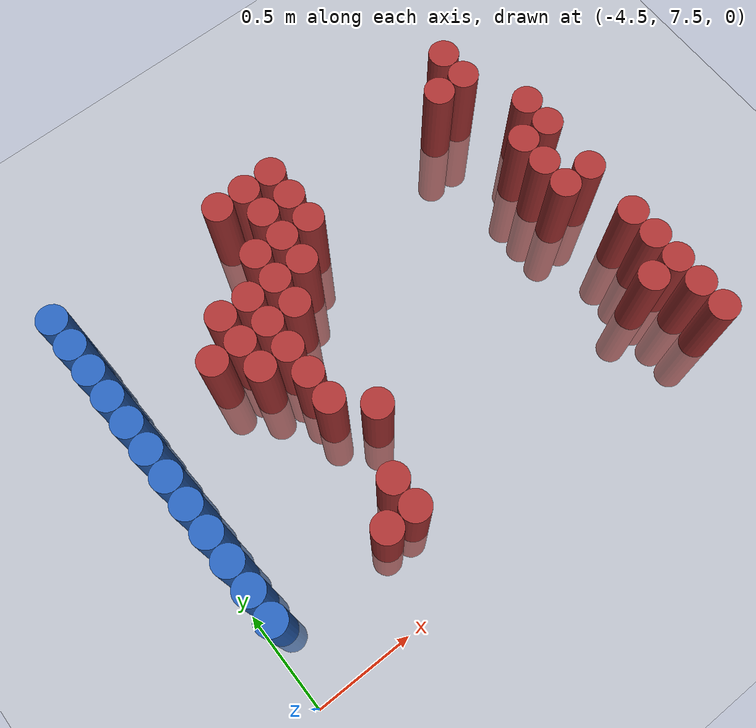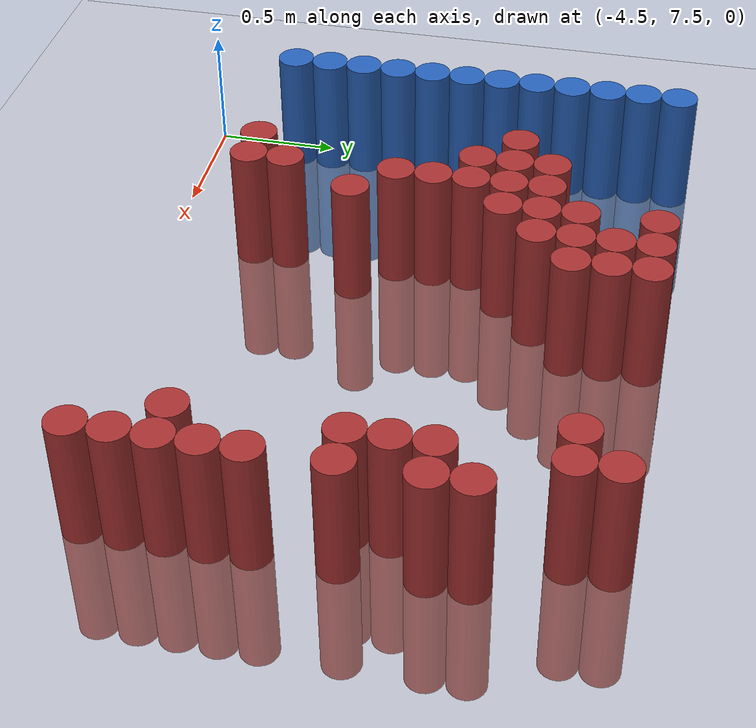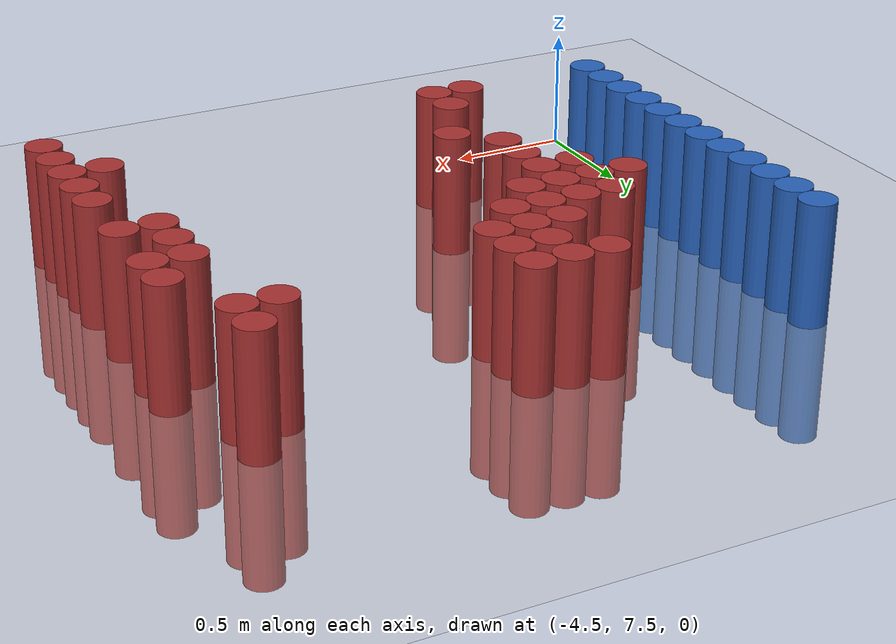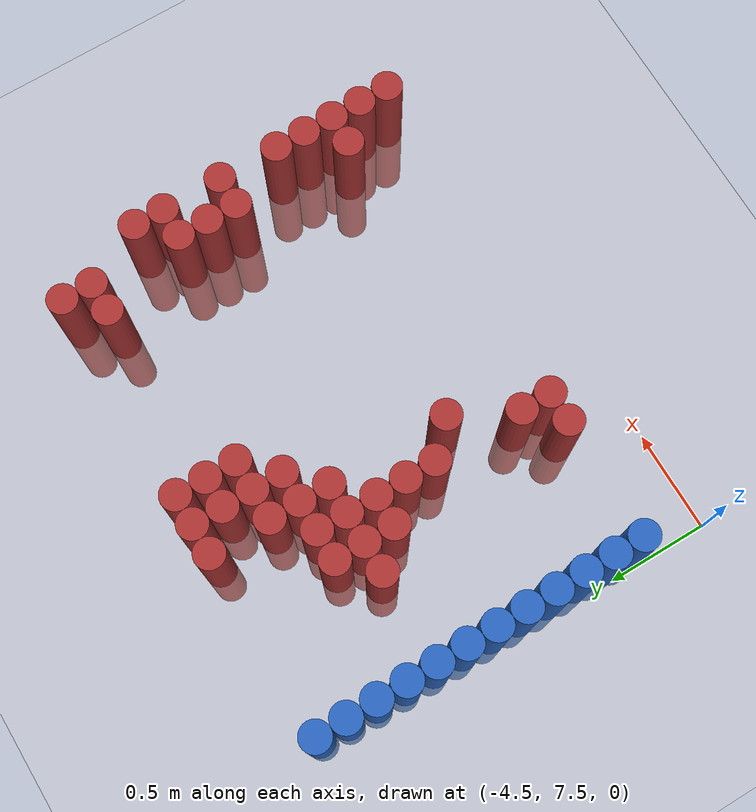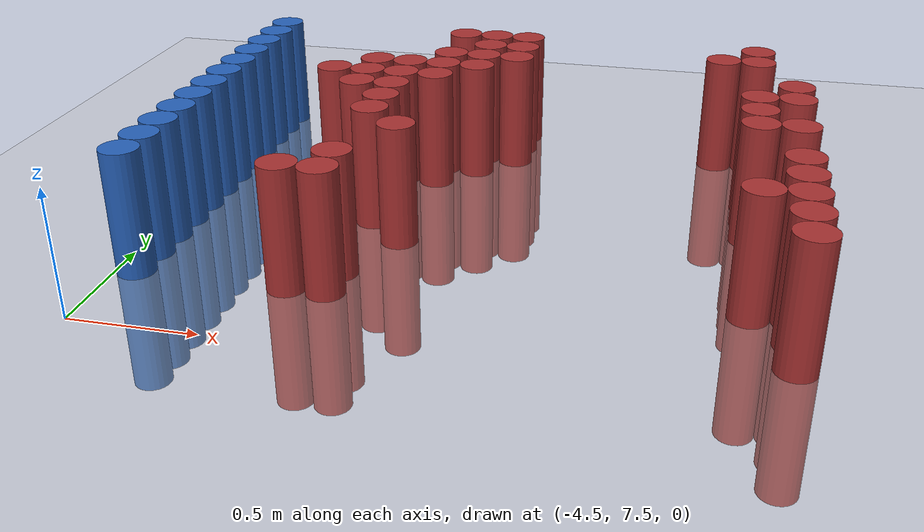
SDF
<sdf version="1.6">
 <world name="default">
  <model name="ground_plane">
   <static>1</static>
   <link name="link">
    <collision name="collision">
     <geometry><plane><normal>0 0 1</normal><size>100 100</size></plane></geometry>
     <surface><friction><ode><mu>100</mu><mu2>50</mu2></ode></friction></surface>
    </collision>
    <visual name="visual">
     <cast_shadows>0</cast_shadows>
     <geometry><plane><normal>0 0 1</normal><size>100 100</size></plane></geometry>
     <material>
      <script><uri>file://media/materials/scripts/gazebo.material</uri><name>Gazebo/Grey</name></script>
     </material>
    </visual>
   </link>
  </model>
  <model name="unit_cylinder_114">
   <static>1</static>
   <pose>-4.425000 7.875000 0.000000 0.000000 0.000000 0.000000</pose>
   <link name="link">
    <inertial>
     <mass>1</mass>
     <inertia><ixx>0.145833</ixx><ixy>0</ixy><ixz>0</ixz><iyy>0.145833</iyy><iyz>0</iyz><izz>0.125</izz></inertia>
    </inertial>
    <collision name="collision">
     <geometry><cylinder><radius>0.075000</radius><length>1</length></cylinder></geometry>
    </collision>
    <visual name="visual">
     <geometry><cylinder><radius>0.075000</radius><length>1</length></cylinder></geometry>
     <material>
      <ambient>0.152000 0.379000 0.720000 1</ambient>
      <diffuse>0.152000 0.379000 0.720000 1</diffuse>
     </material>
     <material>
      <script><name>Gazebo/Grey</name><uri>file://media/materials/scripts/gazebo.material</uri></script>
     </material>
    </visual>
   </link>
  </model>
  <model name="unit_cylinder_115">
   <static>1</static>
   <pose>-4.425000 8.025000 0.000000 0.000000 0.000000 0.000000</pose>
   <link name="link">
    <inertial>
     <mass>1</mass>
     <inertia><ixx>0.145833</ixx><ixy>0</ixy><ixz>0</ixz><iyy>0.145833</iyy><iyz>0</iyz><izz>0.125</izz></inertia>
    </inertial>
    <collision name="collision">
     <geometry><cylinder><radius>0.075000</radius><length>1</length></cylinder></geometry>
    </collision>
    <visual name="visual">
     <geometry><cylinder><radius>0.075000</radius><length>1</length></cylinder></geometry>
     <material>
      <ambient>0.152000 0.379000 0.720000 1</ambient>
      <diffuse>0.152000 0.379000 0.720000 1</diffuse>
     </material>
     <material>
      <script><name>Gazebo/Grey</name><uri>file://media/materials/scripts/gazebo.material</uri></script>
     </material>
    </visual>
   </link>
  </model>
  <model name="unit_cylinder_116">
   <static>1</static>
   <pose>-4.425000 8.175000 0.000000 0.000000 0.000000 0.000000</pose>
   <link name="link">
    <inertial>
     <mass>1</mass>
     <inertia><ixx>0.145833</ixx><ixy>0</ixy><ixz>0</ixz><iyy>0.145833</iyy><iyz>0</iyz><izz>0.125</izz></inertia>
    </inertial>
    <collision name="collision">
     <geometry><cylinder><radius>0.075000</radius><length>1</length></cylinder></geometry>
    </collision>
    <visual name="visual">
     <geometry><cylinder><radius>0.075000</radius><length>1</length></cylinder></geometry>
     <material>
      <ambient>0.152000 0.379000 0.720000 1</ambient>
      <diffuse>0.152000 0.379000 0.720000 1</diffuse>
     </material>
     <material>
      <script><name>Gazebo/Grey</name><uri>file://media/materials/scripts/gazebo.material</uri></script>
     </material>
    </visual>
   </link>
  </model>
  <model name="unit_cylinder_117">
   <static>1</static>
   <pose>-4.425000 8.325000 0.000000 0.000000 0.000000 0.000000</pose>
   <link name="link">
    <inertial>
     <mass>1</mass>
     <inertia><ixx>0.145833</ixx><ixy>0</ixy><ixz>0</ixz><iyy>0.145833</iyy><iyz>0</iyz><izz>0.125</izz></inertia>
    </inertial>
    <collision name="collision">
     <geometry><cylinder><radius>0.075000</radius><length>1</length></cylinder></geometry>
    </collision>
    <visual name="visual">
     <geometry><cylinder><radius>0.075000</radius><length>1</length></cylinder></geometry>
     <material>
      <ambient>0.152000 0.379000 0.720000 1</ambient>
      <diffuse>0.152000 0.379000 0.720000 1</diffuse>
     </material>
     <material>
      <script><name>Gazebo/Grey</name><uri>file://media/materials/scripts/gazebo.material</uri></script>
     </material>
    </visual>
   </link>
  </model>
  <model name="unit_cylinder_118">
   <static>1</static>
   <pose>-4.425000 8.475000 0.000000 0.000000 0.000000 0.000000</pose>
   <link name="link">
    <inertial>
     <mass>1</mass>
     <inertia><ixx>0.145833</ixx><ixy>0</ixy><ixz>0</ixz><iyy>0.145833</iyy><iyz>0</iyz><izz>0.125</izz></inertia>
    </inertial>
    <collision name="collision">
     <geometry><cylinder><radius>0.075000</radius><length>1</length></cylinder></geometry>
    </collision>
    <visual name="visual">
     <geometry><cylinder><radius>0.075000</radius><length>1</length></cylinder></geometry>
     <material>
      <ambient>0.152000 0.379000 0.720000 1</ambient>
      <diffuse>0.152000 0.379000 0.720000 1</diffuse>
     </material>
     <material>
      <script><name>Gazebo/Grey</name><uri>file://media/materials/scripts/gazebo.material</uri></script>
     </material>
    </visual>
   </link>
  </model>
  <model name="unit_cylinder_119">
   <static>1</static>
   <pose>-4.425000 8.625000 0.000000 0.000000 0.000000 0.000000</pose>
   <link name="link">
    <inertial>
     <mass>1</mass>
     <inertia><ixx>0.145833</ixx><ixy>0</ixy><ixz>0</ixz><iyy>0.145833</iyy><iyz>0</iyz><izz>0.125</izz></inertia>
    </inertial>
    <collision name="collision">
     <geometry><cylinder><radius>0.075000</radius><length>1</length></cylinder></geometry>
    </collision>
    <visual name="visual">
     <geometry><cylinder><radius>0.075000</radius><length>1</length></cylinder></geometry>
     <material>
      <ambient>0.152000 0.379000 0.720000 1</ambient>
      <diffuse>0.152000 0.379000 0.720000 1</diffuse>
     </material>
     <material>
      <script><name>Gazebo/Grey</name><uri>file://media/materials/scripts/gazebo.material</uri></script>
     </material>
    </visual>
   </link>
  </model>
  <model name="unit_cylinder_120">
   <static>1</static>
   <pose>-4.425000 8.775000 0.000000 0.000000 0.000000 0.000000</pose>
   <link name="link">
    <inertial>
     <mass>1</mass>
     <inertia><ixx>0.145833</ixx><ixy>0</ixy><ixz>0</ixz><iyy>0.145833</iyy><iyz>0</iyz><izz>0.125</izz></inertia>
    </inertial>
    <collision name="collision">
     <geometry><cylinder><radius>0.075000</radius><length>1</length></cylinder></geometry>
    </collision>
    <visual name="visual">
     <geometry><cylinder><radius>0.075000</radius><length>1</length></cylinder></geometry>
     <material>
      <ambient>0.152000 0.379000 0.720000 1</ambient>
      <diffuse>0.152000 0.379000 0.720000 1</diffuse>
     </material>
     <material>
      <script><name>Gazebo/Grey</name><uri>file://media/materials/scripts/gazebo.material</uri></script>
     </material>
    </visual>
   </link>
  </model>
  <model name="unit_cylinder_121">
   <static>1</static>
   <pose>-4.425000 8.925000 0.000000 0.000000 0.000000 0.000000</pose>
   <link name="link">
    <inertial>
     <mass>1</mass>
     <inertia><ixx>0.145833</ixx><ixy>0</ixy><ixz>0</ixz><iyy>0.145833</iyy><iyz>0</iyz><izz>0.125</izz></inertia>
    </inertial>
    <collision name="collision">
     <geometry><cylinder><radius>0.075000</radius><length>1</length></cylinder></geometry>
    </collision>
    <visual name="visual">
     <geometry><cylinder><radius>0.075000</radius><length>1</length></cylinder></geometry>
     <material>
      <ambient>0.152000 0.379000 0.720000 1</ambient>
      <diffuse>0.152000 0.379000 0.720000 1</diffuse>
     </material>
     <material>
      <script><name>Gazebo/Grey</name><uri>file://media/materials/scripts/gazebo.material</uri></script>
     </material>
    </visual>
   </link>
  </model>
  <model name="unit_cylinder_122">
   <static>1</static>
   <pose>-4.425000 9.075000 0.000000 0.000000 0.000000 0.000000</pose>
   <link name="link">
    <inertial>
     <mass>1</mass>
     <inertia><ixx>0.145833</ixx><ixy>0</ixy><ixz>0</ixz><iyy>0.145833</iyy><iyz>0</iyz><izz>0.125</izz></inertia>
    </inertial>
    <collision name="collision">
     <geometry><cylinder><radius>0.075000</radius><length>1</length></cylinder></geometry>
    </collision>
    <visual name="visual">
     <geometry><cylinder><radius>0.075000</radius><length>1</length></cylinder></geometry>
     <material>
      <ambient>0.152000 0.379000 0.720000 1</ambient>
      <diffuse>0.152000 0.379000 0.720000 1</diffuse>
     </material>
     <material>
      <script><name>Gazebo/Grey</name><uri>file://media/materials/scripts/gazebo.material</uri></script>
     </material>
    </visual>
   </link>
  </model>
  <model name="unit_cylinder_123">
   <static>1</static>
   <pose>-4.425000 9.225000 0.000000 0.000000 0.000000 0.000000</pose>
   <link name="link">
    <inertial>
     <mass>1</mass>
     <inertia><ixx>0.145833</ixx><ixy>0</ixy><ixz>0</ixz><iyy>0.145833</iyy><iyz>0</iyz><izz>0.125</izz></inertia>
    </inertial>
    <collision name="collision">
     <geometry><cylinder><radius>0.075000</radius><length>1</length></cylinder></geometry>
    </collision>
    <visual name="visual">
     <geometry><cylinder><radius>0.075000</radius><length>1</length></cylinder></geometry>
     <material>
      <ambient>0.152000 0.379000 0.720000 1</ambient>
      <diffuse>0.152000 0.379000 0.720000 1</diffuse>
     </material>
     <material>
      <script><name>Gazebo/Grey</name><uri>file://media/materials/scripts/gazebo.material</uri></script>
     </material>
    </visual>
   </link>
  </model>
  <model name="unit_cylinder_124">
   <static>1</static>
   <pose>-4.425000 9.375000 0.000000 0.000000 0.000000 0.000000</pose>
   <link name="link">
    <inertial>
     <mass>1</mass>
     <inertia><ixx>0.145833</ixx><ixy>0</ixy><ixz>0</ixz><iyy>0.145833</iyy><iyz>0</iyz><izz>0.125</izz></inertia>
    </inertial>
    <collision name="collision">
     <geometry><cylinder><radius>0.075000</radius><length>1</length></cylinder></geometry>
    </collision>
    <visual name="visual">
     <geometry><cylinder><radius>0.075000</radius><length>1</length></cylinder></geometry>
     <material>
      <ambient>0.152000 0.379000 0.720000 1</ambient>
      <diffuse>0.152000 0.379000 0.720000 1</diffuse>
     </material>
     <material>
      <script><name>Gazebo/Grey</name><uri>file://media/materials/scripts/gazebo.material</uri></script>
     </material>
    </visual>
   </link>
  </model>
  <model name="unit_cylinder_125">
   <static>1</static>
   <pose>-4.425000 9.525000 0.000000 0.000000 0.000000 0.000000</pose>
   <link name="link">
    <inertial>
     <mass>1</mass>
     <inertia><ixx>0.145833</ixx><ixy>0</ixy><ixz>0</ixz><iyy>0.145833</iyy><iyz>0</iyz><izz>0.125</izz></inertia>
    </inertial>
    <collision name="collision">
     <geometry><cylinder><radius>0.075000</radius><length>1</length></cylinder></geometry>
    </collision>
    <visual name="visual">
     <geometry><cylinder><radius>0.075000</radius><length>1</length></cylinder></geometry>
     <material>
      <ambient>0.152000 0.379000 0.720000 1</ambient>
      <diffuse>0.152000 0.379000 0.720000 1</diffuse>
     </material>
     <material>
      <script><name>Gazebo/Grey</name><uri>file://media/materials/scripts/gazebo.material</uri></script>
     </material>
    </visual>
   </link>
  </model>
  <model name="unit_cylinder_148">
   <static>1</static>
   <pose>-3.975000 8.925000 0.000000 0.000000 0.000000 0.000000</pose>
   <link name="link">
    <inertial>
     <mass>1</mass>
     <inertia><ixx>0.145833</ixx><ixy>0</ixy><ixz>0</ixz><iyy>0.145833</iyy><iyz>0</iyz><izz>0.125</izz></inertia>
    </inertial>
    <collision name="collision">
     <geometry><cylinder><radius>0.075000</radius><length>1</length></cylinder></geometry>
    </collision>
    <visual name="visual">
     <geometry><cylinder><radius>0.075000</radius><length>1</length></cylinder></geometry>
     <material>
      <ambient>0.648000 0.192000 0.192000 1</ambient>
      <diffuse>0.648000 0.192000 0.192000 1</diffuse>
     </material>
     <material>
      <script><name>Gazebo/Grey</name><uri>file://media/materials/scripts/gazebo.material</uri></script>
     </material>
    </visual>
   </link>
  </model>
  <model name="unit_cylinder_151">
   <static>1</static>
   <pose>-3.825000 7.875000 0.000000 0.000000 0.000000 0.000000</pose>
   <link name="link">
    <inertial>
     <mass>1</mass>
     <inertia><ixx>0.145833</ixx><ixy>0</ixy><ixz>0</ixz><iyy>0.145833</iyy><iyz>0</iyz><izz>0.125</izz></inertia>
    </inertial>
    <collision name="collision">
     <geometry><cylinder><radius>0.075000</radius><length>1</length></cylinder></geometry>
    </collision>
    <visual name="visual">
     <geometry><cylinder><radius>0.075000</radius><length>1</length></cylinder></geometry>
     <material>
      <ambient>0.648000 0.192000 0.192000 1</ambient>
      <diffuse>0.648000 0.192000 0.192000 1</diffuse>
     </material>
     <material>
      <script><name>Gazebo/Grey</name><uri>file://media/materials/scripts/gazebo.material</uri></script>
     </material>
    </visual>
   </link>
  </model>
  <model name="unit_cylinder_152">
   <static>1</static>
   <pose>-3.825000 8.775000 0.000000 0.000000 0.000000 0.000000</pose>
   <link name="link">
    <inertial>
     <mass>1</mass>
     <inertia><ixx>0.145833</ixx><ixy>0</ixy><ixz>0</ixz><iyy>0.145833</iyy><iyz>0</iyz><izz>0.125</izz></inertia>
    </inertial>
    <collision name="collision">
     <geometry><cylinder><radius>0.075000</radius><length>1</length></cylinder></geometry>
    </collision>
    <visual name="visual">
     <geometry><cylinder><radius>0.075000</radius><length>1</length></cylinder></geometry>
     <material>
      <ambient>0.648000 0.192000 0.192000 1</ambient>
      <diffuse>0.648000 0.192000 0.192000 1</diffuse>
     </material>
     <material>
      <script><name>Gazebo/Grey</name><uri>file://media/materials/scripts/gazebo.material</uri></script>
     </material>
    </visual>
   </link>
  </model>
  <model name="unit_cylinder_153">
   <static>1</static>
   <pose>-3.825000 8.925000 0.000000 0.000000 0.000000 0.000000</pose>
   <link name="link">
    <inertial>
     <mass>1</mass>
     <inertia><ixx>0.145833</ixx><ixy>0</ixy><ixz>0</ixz><iyy>0.145833</iyy><iyz>0</iyz><izz>0.125</izz></inertia>
    </inertial>
    <collision name="collision">
     <geometry><cylinder><radius>0.075000</radius><length>1</length></cylinder></geometry>
    </collision>
    <visual name="visual">
     <geometry><cylinder><radius>0.075000</radius><length>1</length></cylinder></geometry>
     <material>
      <ambient>0.648000 0.192000 0.192000 1</ambient>
      <diffuse>0.648000 0.192000 0.192000 1</diffuse>
     </material>
     <material>
      <script><name>Gazebo/Grey</name><uri>file://media/materials/scripts/gazebo.material</uri></script>
     </material>
    </visual>
   </link>
  </model>
  <model name="unit_cylinder_154">
   <static>1</static>
   <pose>-3.825000 9.075000 0.000000 0.000000 0.000000 0.000000</pose>
   <link name="link">
    <inertial>
     <mass>1</mass>
     <inertia><ixx>0.145833</ixx><ixy>0</ixy><ixz>0</ixz><iyy>0.145833</iyy><iyz>0</iyz><izz>0.125</izz></inertia>
    </inertial>
    <collision name="collision">
     <geometry><cylinder><radius>0.075000</radius><length>1</length></cylinder></geometry>
    </collision>
    <visual name="visual">
     <geometry><cylinder><radius>0.075000</radius><length>1</length></cylinder></geometry>
     <material>
      <ambient>0.648000 0.192000 0.192000 1</ambient>
      <diffuse>0.648000 0.192000 0.192000 1</diffuse>
     </material>
     <material>
      <script><name>Gazebo/Grey</name><uri>file://media/materials/scripts/gazebo.material</uri></script>
     </material>
    </visual>
   </link>
  </model>
  <model name="unit_cylinder_158">
   <static>1</static>
   <pose>-3.675000 7.875000 0.000000 0.000000 0.000000 0.000000</pose>
   <link name="link">
    <inertial>
     <mass>1</mass>
     <inertia><ixx>0.145833</ixx><ixy>0</ixy><ixz>0</ixz><iyy>0.145833</iyy><iyz>0</iyz><izz>0.125</izz></inertia>
    </inertial>
    <collision name="collision">
     <geometry><cylinder><radius>0.075000</radius><length>1</length></cylinder></geometry>
    </collision>
    <visual name="visual">
     <geometry><cylinder><radius>0.075000</radius><length>1</length></cylinder></geometry>
     <material>
      <ambient>0.648000 0.192000 0.192000 1</ambient>
      <diffuse>0.648000 0.192000 0.192000 1</diffuse>
     </material>
     <material>
      <script><name>Gazebo/Grey</name><uri>file://media/materials/scripts/gazebo.material</uri></script>
     </material>
    </visual>
   </link>
  </model>
  <model name="unit_cylinder_159">
   <static>1</static>
   <pose>-3.675000 8.025000 0.000000 0.000000 0.000000 0.000000</pose>
   <link name="link">
    <inertial>
     <mass>1</mass>
     <inertia><ixx>0.145833</ixx><ixy>0</ixy><ixz>0</ixz><iyy>0.145833</iyy><iyz>0</iyz><izz>0.125</izz></inertia>
    </inertial>
    <collision name="collision">
     <geometry><cylinder><radius>0.075000</radius><length>1</length></cylinder></geometry>
    </collision>
    <visual name="visual">
     <geometry><cylinder><radius>0.075000</radius><length>1</length></cylinder></geometry>
     <material>
      <ambient>0.648000 0.192000 0.192000 1</ambient>
      <diffuse>0.648000 0.192000 0.192000 1</diffuse>
     </material>
     <material>
      <script><name>Gazebo/Grey</name><uri>file://media/materials/scripts/gazebo.material</uri></script>
     </material>
    </visual>
   </link>
  </model>
  <model name="unit_cylinder_160">
   <static>1</static>
   <pose>-3.675000 8.475000 0.000000 0.000000 0.000000 0.000000</pose>
   <link name="link">
    <inertial>
     <mass>1</mass>
     <inertia><ixx>0.145833</ixx><ixy>0</ixy><ixz>0</ixz><iyy>0.145833</iyy><iyz>0</iyz><izz>0.125</izz></inertia>
    </inertial>
    <collision name="collision">
     <geometry><cylinder><radius>0.075000</radius><length>1</length></cylinder></geometry>
    </collision>
    <visual name="visual">
     <geometry><cylinder><radius>0.075000</radius><length>1</length></cylinder></geometry>
     <material>
      <ambient>0.648000 0.192000 0.192000 1</ambient>
      <diffuse>0.648000 0.192000 0.192000 1</diffuse>
     </material>
     <material>
      <script><name>Gazebo/Grey</name><uri>file://media/materials/scripts/gazebo.material</uri></script>
     </material>
    </visual>
   </link>
  </model>
  <model name="unit_cylinder_161">
   <static>1</static>
   <pose>-3.675000 8.625000 0.000000 0.000000 0.000000 0.000000</pose>
   <link name="link">
    <inertial>
     <mass>1</mass>
     <inertia><ixx>0.145833</ixx><ixy>0</ixy><ixz>0</ixz><iyy>0.145833</iyy><iyz>0</iyz><izz>0.125</izz></inertia>
    </inertial>
    <collision name="collision">
     <geometry><cylinder><radius>0.075000</radius><length>1</length></cylinder></geometry>
    </collision>
    <visual name="visual">
     <geometry><cylinder><radius>0.075000</radius><length>1</length></cylinder></geometry>
     <material>
      <ambient>0.648000 0.192000 0.192000 1</ambient>
      <diffuse>0.648000 0.192000 0.192000 1</diffuse>
     </material>
     <material>
      <script><name>Gazebo/Grey</name><uri>file://media/materials/scripts/gazebo.material</uri></script>
     </material>
    </visual>
   </link>
  </model>
  <model name="unit_cylinder_162">
   <static>1</static>
   <pose>-3.675000 8.775000 0.000000 0.000000 0.000000 0.000000</pose>
   <link name="link">
    <inertial>
     <mass>1</mass>
     <inertia><ixx>0.145833</ixx><ixy>0</ixy><ixz>0</ixz><iyy>0.145833</iyy><iyz>0</iyz><izz>0.125</izz></inertia>
    </inertial>
    <collision name="collision">
     <geometry><cylinder><radius>0.075000</radius><length>1</length></cylinder></geometry>
    </collision>
    <visual name="visual">
     <geometry><cylinder><radius>0.075000</radius><length>1</length></cylinder></geometry>
     <material>
      <ambient>0.648000 0.192000 0.192000 1</ambient>
      <diffuse>0.648000 0.192000 0.192000 1</diffuse>
     </material>
     <material>
      <script><name>Gazebo/Grey</name><uri>file://media/materials/scripts/gazebo.material</uri></script>
     </material>
    </visual>
   </link>
  </model>
  <model name="unit_cylinder_163">
   <static>1</static>
   <pose>-3.675000 8.925000 0.000000 0.000000 0.000000 0.000000</pose>
   <link name="link">
    <inertial>
     <mass>1</mass>
     <inertia><ixx>0.145833</ixx><ixy>0</ixy><ixz>0</ixz><iyy>0.145833</iyy><iyz>0</iyz><izz>0.125</izz></inertia>
    </inertial>
    <collision name="collision">
     <geometry><cylinder><radius>0.075000</radius><length>1</length></cylinder></geometry>
    </collision>
    <visual name="visual">
     <geometry><cylinder><radius>0.075000</radius><length>1</length></cylinder></geometry>
     <material>
      <ambient>0.648000 0.192000 0.192000 1</ambient>
      <diffuse>0.648000 0.192000 0.192000 1</diffuse>
     </material>
     <material>
      <script><name>Gazebo/Grey</name><uri>file://media/materials/scripts/gazebo.material</uri></script>
     </material>
    </visual>
   </link>
  </model>
  <model name="unit_cylinder_164">
   <static>1</static>
   <pose>-3.675000 9.075000 0.000000 0.000000 0.000000 0.000000</pose>
   <link name="link">
    <inertial>
     <mass>1</mass>
     <inertia><ixx>0.145833</ixx><ixy>0</ixy><ixz>0</ixz><iyy>0.145833</iyy><iyz>0</iyz><izz>0.125</izz></inertia>
    </inertial>
    <collision name="collision">
     <geometry><cylinder><radius>0.075000</radius><length>1</length></cylinder></geometry>
    </collision>
    <visual name="visual">
     <geometry><cylinder><radius>0.075000</radius><length>1</length></cylinder></geometry>
     <material>
      <ambient>0.648000 0.192000 0.192000 1</ambient>
      <diffuse>0.648000 0.192000 0.192000 1</diffuse>
     </material>
     <material>
      <script><name>Gazebo/Grey</name><uri>file://media/materials/scripts/gazebo.material</uri></script>
     </material>
    </visual>
   </link>
  </model>
  <model name="unit_cylinder_170">
   <static>1</static>
   <pose>-3.525000 8.325000 0.000000 0.000000 0.000000 0.000000</pose>
   <link name="link">
    <inertial>
     <mass>1</mass>
     <inertia><ixx>0.145833</ixx><ixy>0</ixy><ixz>0</ixz><iyy>0.145833</iyy><iyz>0</iyz><izz>0.125</izz></inertia>
    </inertial>
    <collision name="collision">
     <geometry><cylinder><radius>0.075000</radius><length>1</length></cylinder></geometry>
    </collision>
    <visual name="visual">
     <geometry><cylinder><radius>0.075000</radius><length>1</length></cylinder></geometry>
     <material>
      <ambient>0.648000 0.192000 0.192000 1</ambient>
      <diffuse>0.648000 0.192000 0.192000 1</diffuse>
     </material>
     <material>
      <script><name>Gazebo/Grey</name><uri>file://media/materials/scripts/gazebo.material</uri></script>
     </material>
    </visual>
   </link>
  </model>
  <model name="unit_cylinder_171">
   <static>1</static>
   <pose>-3.525000 8.925000 0.000000 0.000000 0.000000 0.000000</pose>
   <link name="link">
    <inertial>
     <mass>1</mass>
     <inertia><ixx>0.145833</ixx><ixy>0</ixy><ixz>0</ixz><iyy>0.145833</iyy><iyz>0</iyz><izz>0.125</izz></inertia>
    </inertial>
    <collision name="collision">
     <geometry><cylinder><radius>0.075000</radius><length>1</length></cylinder></geometry>
    </collision>
    <visual name="visual">
     <geometry><cylinder><radius>0.075000</radius><length>1</length></cylinder></geometry>
     <material>
      <ambient>0.648000 0.192000 0.192000 1</ambient>
      <diffuse>0.648000 0.192000 0.192000 1</diffuse>
     </material>
     <material>
      <script><name>Gazebo/Grey</name><uri>file://media/materials/scripts/gazebo.material</uri></script>
     </material>
    </visual>
   </link>
  </model>
  <model name="unit_cylinder_172">
   <static>1</static>
   <pose>-3.525000 9.075000 0.000000 0.000000 0.000000 0.000000</pose>
   <link name="link">
    <inertial>
     <mass>1</mass>
     <inertia><ixx>0.145833</ixx><ixy>0</ixy><ixz>0</ixz><iyy>0.145833</iyy><iyz>0</iyz><izz>0.125</izz></inertia>
    </inertial>
    <collision name="collision">
     <geometry><cylinder><radius>0.075000</radius><length>1</length></cylinder></geometry>
    </collision>
    <visual name="visual">
     <geometry><cylinder><radius>0.075000</radius><length>1</length></cylinder></geometry>
     <material>
      <ambient>0.648000 0.192000 0.192000 1</ambient>
      <diffuse>0.648000 0.192000 0.192000 1</diffuse>
     </material>
     <material>
      <script><name>Gazebo/Grey</name><uri>file://media/materials/scripts/gazebo.material</uri></script>
     </material>
    </visual>
   </link>
  </model>
  <model name="unit_cylinder_173">
   <static>1</static>
   <pose>-3.525000 9.225000 0.000000 0.000000 0.000000 0.000000</pose>
   <link name="link">
    <inertial>
     <mass>1</mass>
     <inertia><ixx>0.145833</ixx><ixy>0</ixy><ixz>0</ixz><iyy>0.145833</iyy><iyz>0</iyz><izz>0.125</izz></inertia>
    </inertial>
    <collision name="collision">
     <geometry><cylinder><radius>0.075000</radius><length>1</length></cylinder></geometry>
    </collision>
    <visual name="visual">
     <geometry><cylinder><radius>0.075000</radius><length>1</length></cylinder></geometry>
     <material>
      <ambient>0.648000 0.192000 0.192000 1</ambient>
      <diffuse>0.648000 0.192000 0.192000 1</diffuse>
     </material>
     <material>
      <script><name>Gazebo/Grey</name><uri>file://media/materials/scripts/gazebo.material</uri></script>
     </material>
    </visual>
   </link>
  </model>
  <model name="unit_cylinder_174">
   <static>1</static>
   <pose>-3.525000 9.525000 0.000000 0.000000 0.000000 0.000000</pose>
   <link name="link">
    <inertial>
     <mass>1</mass>
     <inertia><ixx>0.145833</ixx><ixy>0</ixy><ixz>0</ixz><iyy>0.145833</iyy><iyz>0</iyz><izz>0.125</izz></inertia>
    </inertial>
    <collision name="collision">
     <geometry><cylinder><radius>0.075000</radius><length>1</length></cylinder></geometry>
    </collision>
    <visual name="visual">
     <geometry><cylinder><radius>0.075000</radius><length>1</length></cylinder></geometry>
     <material>
      <ambient>0.648000 0.192000 0.192000 1</ambient>
      <diffuse>0.648000 0.192000 0.192000 1</diffuse>
     </material>
     <material>
      <script><name>Gazebo/Grey</name><uri>file://media/materials/scripts/gazebo.material</uri></script>
     </material>
    </visual>
   </link>
  </model>
  <model name="unit_cylinder_180">
   <static>1</static>
   <pose>-3.375000 9.075000 0.000000 0.000000 0.000000 0.000000</pose>
   <link name="link">
    <inertial>
     <mass>1</mass>
     <inertia><ixx>0.145833</ixx><ixy>0</ixy><ixz>0</ixz><iyy>0.145833</iyy><iyz>0</iyz><izz>0.125</izz></inertia>
    </inertial>
    <collision name="collision">
     <geometry><cylinder><radius>0.075000</radius><length>1</length></cylinder></geometry>
    </collision>
    <visual name="visual">
     <geometry><cylinder><radius>0.075000</radius><length>1</length></cylinder></geometry>
     <material>
      <ambient>0.648000 0.192000 0.192000 1</ambient>
      <diffuse>0.648000 0.192000 0.192000 1</diffuse>
     </material>
     <material>
      <script><name>Gazebo/Grey</name><uri>file://media/materials/scripts/gazebo.material</uri></script>
     </material>
    </visual>
   </link>
  </model>
  <model name="unit_cylinder_181">
   <static>1</static>
   <pose>-3.375000 9.225000 0.000000 0.000000 0.000000 0.000000</pose>
   <link name="link">
    <inertial>
     <mass>1</mass>
     <inertia><ixx>0.145833</ixx><ixy>0</ixy><ixz>0</ixz><iyy>0.145833</iyy><iyz>0</iyz><izz>0.125</izz></inertia>
    </inertial>
    <collision name="collision">
     <geometry><cylinder><radius>0.075000</radius><length>1</length></cylinder></geometry>
    </collision>
    <visual name="visual">
     <geometry><cylinder><radius>0.075000</radius><length>1</length></cylinder></geometry>
     <material>
      <ambient>0.648000 0.192000 0.192000 1</ambient>
      <diffuse>0.648000 0.192000 0.192000 1</diffuse>
     </material>
     <material>
      <script><name>Gazebo/Grey</name><uri>file://media/materials/scripts/gazebo.material</uri></script>
     </material>
    </visual>
   </link>
  </model>
  <model name="unit_cylinder_182">
   <static>1</static>
   <pose>-3.375000 9.375000 0.000000 0.000000 0.000000 0.000000</pose>
   <link name="link">
    <inertial>
     <mass>1</mass>
     <inertia><ixx>0.145833</ixx><ixy>0</ixy><ixz>0</ixz><iyy>0.145833</iyy><iyz>0</iyz><izz>0.125</izz></inertia>
    </inertial>
    <collision name="collision">
     <geometry><cylinder><radius>0.075000</radius><length>1</length></cylinder></geometry>
    </collision>
    <visual name="visual">
     <geometry><cylinder><radius>0.075000</radius><length>1</length></cylinder></geometry>
     <material>
      <ambient>0.648000 0.192000 0.192000 1</ambient>
      <diffuse>0.648000 0.192000 0.192000 1</diffuse>
     </material>
     <material>
      <script><name>Gazebo/Grey</name><uri>file://media/materials/scripts/gazebo.material</uri></script>
     </material>
    </visual>
   </link>
  </model>
  <model name="unit_cylinder_183">
   <static>1</static>
   <pose>-3.375000 9.525000 0.000000 0.000000 0.000000 0.000000</pose>
   <link name="link">
    <inertial>
     <mass>1</mass>
     <inertia><ixx>0.145833</ixx><ixy>0</ixy><ixz>0</ixz><iyy>0.145833</iyy><iyz>0</iyz><izz>0.125</izz></inertia>
    </inertial>
    <collision name="collision">
     <geometry><cylinder><radius>0.075000</radius><length>1</length></cylinder></geometry>
    </collision>
    <visual name="visual">
     <geometry><cylinder><radius>0.075000</radius><length>1</length></cylinder></geometry>
     <material>
      <ambient>0.648000 0.192000 0.192000 1</ambient>
      <diffuse>0.648000 0.192000 0.192000 1</diffuse>
     </material>
     <material>
      <script><name>Gazebo/Grey</name><uri>file://media/materials/scripts/gazebo.material</uri></script>
     </material>
    </visual>
   </link>
  </model>
  <model name="unit_cylinder_189">
   <static>1</static>
   <pose>-3.225000 9.225000 0.000000 0.000000 0.000000 0.000000</pose>
   <link name="link">
    <inertial>
     <mass>1</mass>
     <inertia><ixx>0.145833</ixx><ixy>0</ixy><ixz>0</ixz><iyy>0.145833</iyy><iyz>0</iyz><izz>0.125</izz></inertia>
    </inertial>
    <collision name="collision">
     <geometry><cylinder><radius>0.075000</radius><length>1</length></cylinder></geometry>
    </collision>
    <visual name="visual">
     <geometry><cylinder><radius>0.075000</radius><length>1</length></cylinder></geometry>
     <material>
      <ambient>0.648000 0.192000 0.192000 1</ambient>
      <diffuse>0.648000 0.192000 0.192000 1</diffuse>
     </material>
     <material>
      <script><name>Gazebo/Grey</name><uri>file://media/materials/scripts/gazebo.material</uri></script>
     </material>
    </visual>
   </link>
  </model>
  <model name="unit_cylinder_190">
   <static>1</static>
   <pose>-3.225000 9.375000 0.000000 0.000000 0.000000 0.000000</pose>
   <link name="link">
    <inertial>
     <mass>1</mass>
     <inertia><ixx>0.145833</ixx><ixy>0</ixy><ixz>0</ixz><iyy>0.145833</iyy><iyz>0</iyz><izz>0.125</izz></inertia>
    </inertial>
    <collision name="collision">
     <geometry><cylinder><radius>0.075000</radius><length>1</length></cylinder></geometry>
    </collision>
    <visual name="visual">
     <geometry><cylinder><radius>0.075000</radius><length>1</length></cylinder></geometry>
     <material>
      <ambient>0.648000 0.192000 0.192000 1</ambient>
      <diffuse>0.648000 0.192000 0.192000 1</diffuse>
     </material>
     <material>
      <script><name>Gazebo/Grey</name><uri>file://media/materials/scripts/gazebo.material</uri></script>
     </material>
    </visual>
   </link>
  </model>
  <model name="unit_cylinder_191">
   <static>1</static>
   <pose>-3.225000 9.525000 0.000000 0.000000 0.000000 0.000000</pose>
   <link name="link">
    <inertial>
     <mass>1</mass>
     <inertia><ixx>0.145833</ixx><ixy>0</ixy><ixz>0</ixz><iyy>0.145833</iyy><iyz>0</iyz><izz>0.125</izz></inertia>
    </inertial>
    <collision name="collision">
     <geometry><cylinder><radius>0.075000</radius><length>1</length></cylinder></geometry>
    </collision>
    <visual name="visual">
     <geometry><cylinder><radius>0.075000</radius><length>1</length></cylinder></geometry>
     <material>
      <ambient>0.648000 0.192000 0.192000 1</ambient>
      <diffuse>0.648000 0.192000 0.192000 1</diffuse>
     </material>
     <material>
      <script><name>Gazebo/Grey</name><uri>file://media/materials/scripts/gazebo.material</uri></script>
     </material>
    </visual>
   </link>
  </model>
  <model name="unit_cylinder_194">
   <static>1</static>
   <pose>-2.325000 9.375000 0.000000 0.000000 0.000000 0.000000</pose>
   <link name="link">
    <inertial>
     <mass>1</mass>
     <inertia><ixx>0.145833</ixx><ixy>0</ixy><ixz>0</ixz><iyy>0.145833</iyy><iyz>0</iyz><izz>0.125</izz></inertia>
    </inertial>
    <collision name="collision">
     <geometry><cylinder><radius>0.075000</radius><length>1</length></cylinder></geometry>
    </collision>
    <visual name="visual">
     <geometry><cylinder><radius>0.075000</radius><length>1</length></cylinder></geometry>
     <material>
      <ambient>0.648000 0.192000 0.192000 1</ambient>
      <diffuse>0.648000 0.192000 0.192000 1</diffuse>
     </material>
     <material>
      <script><name>Gazebo/Grey</name><uri>file://media/materials/scripts/gazebo.material</uri></script>
     </material>
    </visual>
   </link>
  </model>
  <model name="unit_cylinder_200">
   <static>1</static>
   <pose>-2.175000 8.025000 0.000000 0.000000 0.000000 0.000000</pose>
   <link name="link">
    <inertial>
     <mass>1</mass>
     <inertia><ixx>0.145833</ixx><ixy>0</ixy><ixz>0</ixz><iyy>0.145833</iyy><iyz>0</iyz><izz>0.125</izz></inertia>
    </inertial>
    <collision name="collision">
     <geometry><cylinder><radius>0.075000</radius><length>1</length></cylinder></geometry>
    </collision>
    <visual name="visual">
     <geometry><cylinder><radius>0.075000</radius><length>1</length></cylinder></geometry>
     <material>
      <ambient>0.648000 0.192000 0.192000 1</ambient>
      <diffuse>0.648000 0.192000 0.192000 1</diffuse>
     </material>
     <material>
      <script><name>Gazebo/Grey</name><uri>file://media/materials/scripts/gazebo.material</uri></script>
     </material>
    </visual>
   </link>
  </model>
  <model name="unit_cylinder_201">
   <static>1</static>
   <pose>-2.175000 8.625000 0.000000 0.000000 0.000000 0.000000</pose>
   <link name="link">
    <inertial>
     <mass>1</mass>
     <inertia><ixx>0.145833</ixx><ixy>0</ixy><ixz>0</ixz><iyy>0.145833</iyy><iyz>0</iyz><izz>0.125</izz></inertia>
    </inertial>
    <collision name="collision">
     <geometry><cylinder><radius>0.075000</radius><length>1</length></cylinder></geometry>
    </collision>
    <visual name="visual">
     <geometry><cylinder><radius>0.075000</radius><length>1</length></cylinder></geometry>
     <material>
      <ambient>0.648000 0.192000 0.192000 1</ambient>
      <diffuse>0.648000 0.192000 0.192000 1</diffuse>
     </material>
     <material>
      <script><name>Gazebo/Grey</name><uri>file://media/materials/scripts/gazebo.material</uri></script>
     </material>
    </visual>
   </link>
  </model>
  <model name="unit_cylinder_202">
   <static>1</static>
   <pose>-2.175000 8.775000 0.000000 0.000000 0.000000 0.000000</pose>
   <link name="link">
    <inertial>
     <mass>1</mass>
     <inertia><ixx>0.145833</ixx><ixy>0</ixy><ixz>0</ixz><iyy>0.145833</iyy><iyz>0</iyz><izz>0.125</izz></inertia>
    </inertial>
    <collision name="collision">
     <geometry><cylinder><radius>0.075000</radius><length>1</length></cylinder></geometry>
    </collision>
    <visual name="visual">
     <geometry><cylinder><radius>0.075000</radius><length>1</length></cylinder></geometry>
     <material>
      <ambient>0.648000 0.192000 0.192000 1</ambient>
      <diffuse>0.648000 0.192000 0.192000 1</diffuse>
     </material>
     <material>
      <script><name>Gazebo/Grey</name><uri>file://media/materials/scripts/gazebo.material</uri></script>
     </material>
    </visual>
   </link>
  </model>
  <model name="unit_cylinder_203">
   <static>1</static>
   <pose>-2.175000 8.925000 0.000000 0.000000 0.000000 0.000000</pose>
   <link name="link">
    <inertial>
     <mass>1</mass>
     <inertia><ixx>0.145833</ixx><ixy>0</ixy><ixz>0</ixz><iyy>0.145833</iyy><iyz>0</iyz><izz>0.125</izz></inertia>
    </inertial>
    <collision name="collision">
     <geometry><cylinder><radius>0.075000</radius><length>1</length></cylinder></geometry>
    </collision>
    <visual name="visual">
     <geometry><cylinder><radius>0.075000</radius><length>1</length></cylinder></geometry>
     <material>
      <ambient>0.648000 0.192000 0.192000 1</ambient>
      <diffuse>0.648000 0.192000 0.192000 1</diffuse>
     </material>
     <material>
      <script><name>Gazebo/Grey</name><uri>file://media/materials/scripts/gazebo.material</uri></script>
     </material>
    </visual>
   </link>
  </model>
  <model name="unit_cylinder_204">
   <static>1</static>
   <pose>-2.175000 9.375000 0.000000 0.000000 0.000000 0.000000</pose>
   <link name="link">
    <inertial>
     <mass>1</mass>
     <inertia><ixx>0.145833</ixx><ixy>0</ixy><ixz>0</ixz><iyy>0.145833</iyy><iyz>0</iyz><izz>0.125</izz></inertia>
    </inertial>
    <collision name="collision">
     <geometry><cylinder><radius>0.075000</radius><length>1</length></cylinder></geometry>
    </collision>
    <visual name="visual">
     <geometry><cylinder><radius>0.075000</radius><length>1</length></cylinder></geometry>
     <material>
      <ambient>0.648000 0.192000 0.192000 1</ambient>
      <diffuse>0.648000 0.192000 0.192000 1</diffuse>
     </material>
     <material>
      <script><name>Gazebo/Grey</name><uri>file://media/materials/scripts/gazebo.material</uri></script>
     </material>
    </visual>
   </link>
  </model>
  <model name="unit_cylinder_205">
   <static>1</static>
   <pose>-2.175000 9.525000 0.000000 0.000000 0.000000 0.000000</pose>
   <link name="link">
    <inertial>
     <mass>1</mass>
     <inertia><ixx>0.145833</ixx><ixy>0</ixy><ixz>0</ixz><iyy>0.145833</iyy><iyz>0</iyz><izz>0.125</izz></inertia>
    </inertial>
    <collision name="collision">
     <geometry><cylinder><radius>0.075000</radius><length>1</length></cylinder></geometry>
    </collision>
    <visual name="visual">
     <geometry><cylinder><radius>0.075000</radius><length>1</length></cylinder></geometry>
     <material>
      <ambient>0.648000 0.192000 0.192000 1</ambient>
      <diffuse>0.648000 0.192000 0.192000 1</diffuse>
     </material>
     <material>
      <script><name>Gazebo/Grey</name><uri>file://media/materials/scripts/gazebo.material</uri></script>
     </material>
    </visual>
   </link>
  </model>
  <model name="unit_cylinder_212">
   <static>1</static>
   <pose>-2.025000 7.725000 0.000000 0.000000 0.000000 0.000000</pose>
   <link name="link">
    <inertial>
     <mass>1</mass>
     <inertia><ixx>0.145833</ixx><ixy>0</ixy><ixz>0</ixz><iyy>0.145833</iyy><iyz>0</iyz><izz>0.125</izz></inertia>
    </inertial>
    <collision name="collision">
     <geometry><cylinder><radius>0.075000</radius><length>1</length></cylinder></geometry>
    </collision>
    <visual name="visual">
     <geometry><cylinder><radius>0.075000</radius><length>1</length></cylinder></geometry>
     <material>
      <ambient>0.648000 0.192000 0.192000 1</ambient>
      <diffuse>0.648000 0.192000 0.192000 1</diffuse>
     </material>
     <material>
      <script><name>Gazebo/Grey</name><uri>file://media/materials/scripts/gazebo.material</uri></script>
     </material>
    </visual>
   </link>
  </model>
  <model name="unit_cylinder_213">
   <static>1</static>
   <pose>-2.025000 7.875000 0.000000 0.000000 0.000000 0.000000</pose>
   <link name="link">
    <inertial>
     <mass>1</mass>
     <inertia><ixx>0.145833</ixx><ixy>0</ixy><ixz>0</ixz><iyy>0.145833</iyy><iyz>0</iyz><izz>0.125</izz></inertia>
    </inertial>
    <collision name="collision">
     <geometry><cylinder><radius>0.075000</radius><length>1</length></cylinder></geometry>
    </collision>
    <visual name="visual">
     <geometry><cylinder><radius>0.075000</radius><length>1</length></cylinder></geometry>
     <material>
      <ambient>0.648000 0.192000 0.192000 1</ambient>
      <diffuse>0.648000 0.192000 0.192000 1</diffuse>
     </material>
     <material>
      <script><name>Gazebo/Grey</name><uri>file://media/materials/scripts/gazebo.material</uri></script>
     </material>
    </visual>
   </link>
  </model>
  <model name="unit_cylinder_214">
   <static>1</static>
   <pose>-2.025000 8.025000 0.000000 0.000000 0.000000 0.000000</pose>
   <link name="link">
    <inertial>
     <mass>1</mass>
     <inertia><ixx>0.145833</ixx><ixy>0</ixy><ixz>0</ixz><iyy>0.145833</iyy><iyz>0</iyz><izz>0.125</izz></inertia>
    </inertial>
    <collision name="collision">
     <geometry><cylinder><radius>0.075000</radius><length>1</length></cylinder></geometry>
    </collision>
    <visual name="visual">
     <geometry><cylinder><radius>0.075000</radius><length>1</length></cylinder></geometry>
     <material>
      <ambient>0.648000 0.192000 0.192000 1</ambient>
      <diffuse>0.648000 0.192000 0.192000 1</diffuse>
     </material>
     <material>
      <script><name>Gazebo/Grey</name><uri>file://media/materials/scripts/gazebo.material</uri></script>
     </material>
    </visual>
   </link>
  </model>
  <model name="unit_cylinder_215">
   <static>1</static>
   <pose>-2.025000 8.175000 0.000000 0.000000 0.000000 0.000000</pose>
   <link name="link">
    <inertial>
     <mass>1</mass>
     <inertia><ixx>0.145833</ixx><ixy>0</ixy><ixz>0</ixz><iyy>0.145833</iyy><iyz>0</iyz><izz>0.125</izz></inertia>
    </inertial>
    <collision name="collision">
     <geometry><cylinder><radius>0.075000</radius><length>1</length></cylinder></geometry>
    </collision>
    <visual name="visual">
     <geometry><cylinder><radius>0.075000</radius><length>1</length></cylinder></geometry>
     <material>
      <ambient>0.648000 0.192000 0.192000 1</ambient>
      <diffuse>0.648000 0.192000 0.192000 1</diffuse>
     </material>
     <material>
      <script><name>Gazebo/Grey</name><uri>file://media/materials/scripts/gazebo.material</uri></script>
     </material>
    </visual>
   </link>
  </model>
  <model name="unit_cylinder_216">
   <static>1</static>
   <pose>-2.025000 8.325000 0.000000 0.000000 0.000000 0.000000</pose>
   <link name="link">
    <inertial>
     <mass>1</mass>
     <inertia><ixx>0.145833</ixx><ixy>0</ixy><ixz>0</ixz><iyy>0.145833</iyy><iyz>0</iyz><izz>0.125</izz></inertia>
    </inertial>
    <collision name="collision">
     <geometry><cylinder><radius>0.075000</radius><length>1</length></cylinder></geometry>
    </collision>
    <visual name="visual">
     <geometry><cylinder><radius>0.075000</radius><length>1</length></cylinder></geometry>
     <material>
      <ambient>0.648000 0.192000 0.192000 1</ambient>
      <diffuse>0.648000 0.192000 0.192000 1</diffuse>
     </material>
     <material>
      <script><name>Gazebo/Grey</name><uri>file://media/materials/scripts/gazebo.material</uri></script>
     </material>
    </visual>
   </link>
  </model>
  <model name="unit_cylinder_217">
   <static>1</static>
   <pose>-2.025000 8.625000 0.000000 0.000000 0.000000 0.000000</pose>
   <link name="link">
    <inertial>
     <mass>1</mass>
     <inertia><ixx>0.145833</ixx><ixy>0</ixy><ixz>0</ixz><iyy>0.145833</iyy><iyz>0</iyz><izz>0.125</izz></inertia>
    </inertial>
    <collision name="collision">
     <geometry><cylinder><radius>0.075000</radius><length>1</length></cylinder></geometry>
    </collision>
    <visual name="visual">
     <geometry><cylinder><radius>0.075000</radius><length>1</length></cylinder></geometry>
     <material>
      <ambient>0.648000 0.192000 0.192000 1</ambient>
      <diffuse>0.648000 0.192000 0.192000 1</diffuse>
     </material>
     <material>
      <script><name>Gazebo/Grey</name><uri>file://media/materials/scripts/gazebo.material</uri></script>
     </material>
    </visual>
   </link>
  </model>
  <model name="unit_cylinder_218">
   <static>1</static>
   <pose>-2.025000 8.925000 0.000000 0.000000 0.000000 0.000000</pose>
   <link name="link">
    <inertial>
     <mass>1</mass>
     <inertia><ixx>0.145833</ixx><ixy>0</ixy><ixz>0</ixz><iyy>0.145833</iyy><iyz>0</iyz><izz>0.125</izz></inertia>
    </inertial>
    <collision name="collision">
     <geometry><cylinder><radius>0.075000</radius><length>1</length></cylinder></geometry>
    </collision>
    <visual name="visual">
     <geometry><cylinder><radius>0.075000</radius><length>1</length></cylinder></geometry>
     <material>
      <ambient>0.648000 0.192000 0.192000 1</ambient>
      <diffuse>0.648000 0.192000 0.192000 1</diffuse>
     </material>
     <material>
      <script><name>Gazebo/Grey</name><uri>file://media/materials/scripts/gazebo.material</uri></script>
     </material>
    </visual>
   </link>
  </model>
  <model name="unit_cylinder_219">
   <static>1</static>
   <pose>-2.025000 9.075000 0.000000 0.000000 0.000000 0.000000</pose>
   <link name="link">
    <inertial>
     <mass>1</mass>
     <inertia><ixx>0.145833</ixx><ixy>0</ixy><ixz>0</ixz><iyy>0.145833</iyy><iyz>0</iyz><izz>0.125</izz></inertia>
    </inertial>
    <collision name="collision">
     <geometry><cylinder><radius>0.075000</radius><length>1</length></cylinder></geometry>
    </collision>
    <visual name="visual">
     <geometry><cylinder><radius>0.075000</radius><length>1</length></cylinder></geometry>
     <material>
      <ambient>0.648000 0.192000 0.192000 1</ambient>
      <diffuse>0.648000 0.192000 0.192000 1</diffuse>
     </material>
     <material>
      <script><name>Gazebo/Grey</name><uri>file://media/materials/scripts/gazebo.material</uri></script>
     </material>
    </visual>
   </link>
  </model>
 </world>
</sdf>
